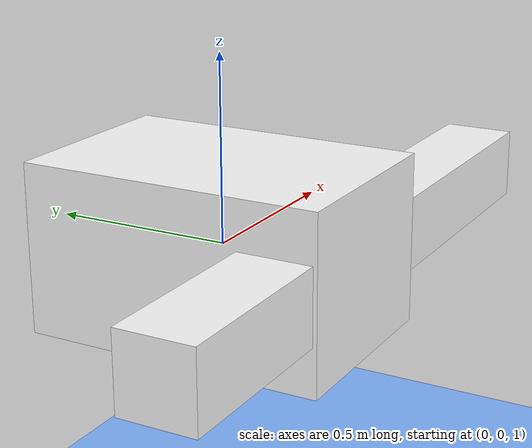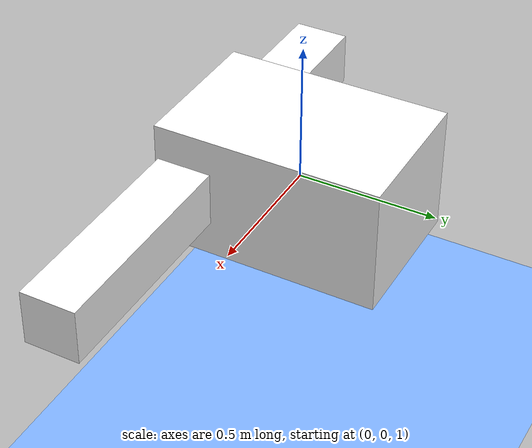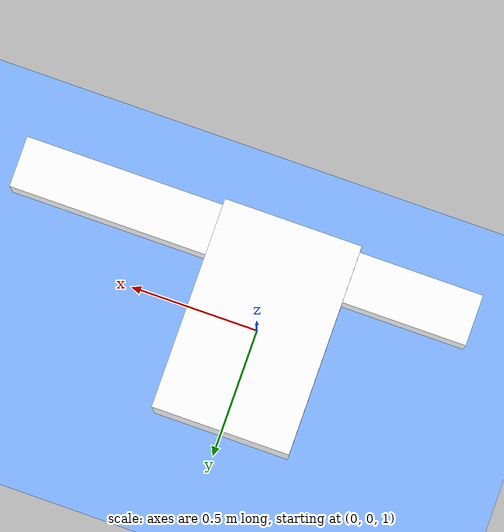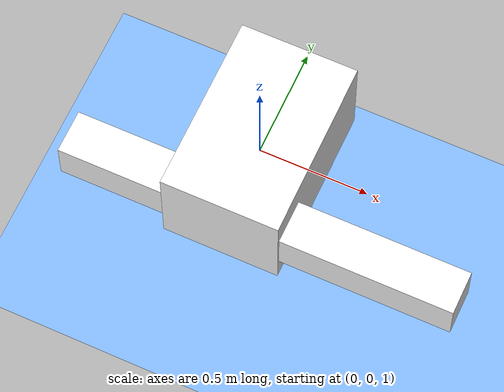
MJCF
<mujoco>
    <worldbody>
        <light diffuse=".5 .5 .5" pos="0 0 2" dir="0 -1 0" />
        <geom type="plane" size="10 10 0.1" rgba="0.5 0.7 1 1" />

        <body name="flappybird" pos="0 0 1" euler="0 0 0">
            <joint type="free" axis="0 0 0" pos="0 0 0" />
            <body name="body" pos="0 0 0" euler="0 0 0">
                <geom type="box" size="0.2697238449908116 0.4111263723589576 0.22997963859647197" rgba="1 1 1 1" mass="0.01" />
            </body>

            <body name="wing1" pos=".5 -.3 0" euler="0 -90 0">
                <joint name="joint1" type="hinge" axis="0 1 0" pos="0 0 .25" range="-45 45" />
                <geom type="box" size="0.1 0.1 0.5555020886240193" rgba="1 1 1 1" mass="0.4588193734599021" />
            </body>

            <body name="wing2" pos="-.5 -.3 0" euler="0 90 0">
                <joint name="joint2" type="hinge" axis="0 1 0" pos="0 0 .25" range="-45 45" />
                <geom type="box" size="0.1 0.1 0.25950917704200965" rgba="1 1 1 1" mass="0.6613827457608886" />
            </body>

        </body>
    </worldbody>

    <actuator>
        <motor joint="joint1" name="m1" gear="9.046445521894821" ctrllimited="true" ctrlrange="-5 5" />
        <motor joint="joint2" name="m2" gear="9.615045580107997" ctrllimited="true" ctrlrange="-5 5" />

</actuator>

</mujoco>
